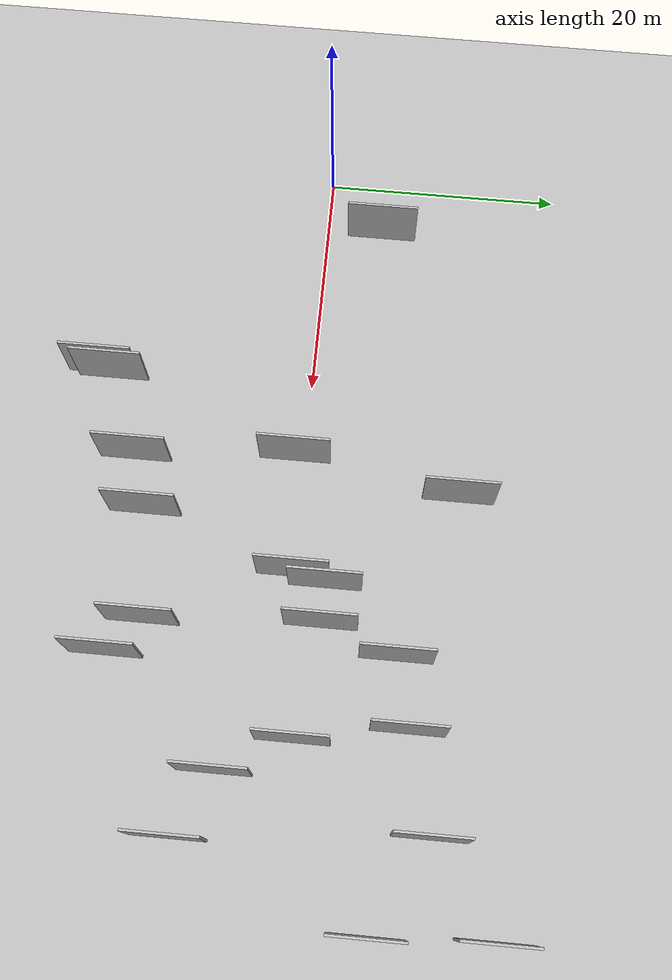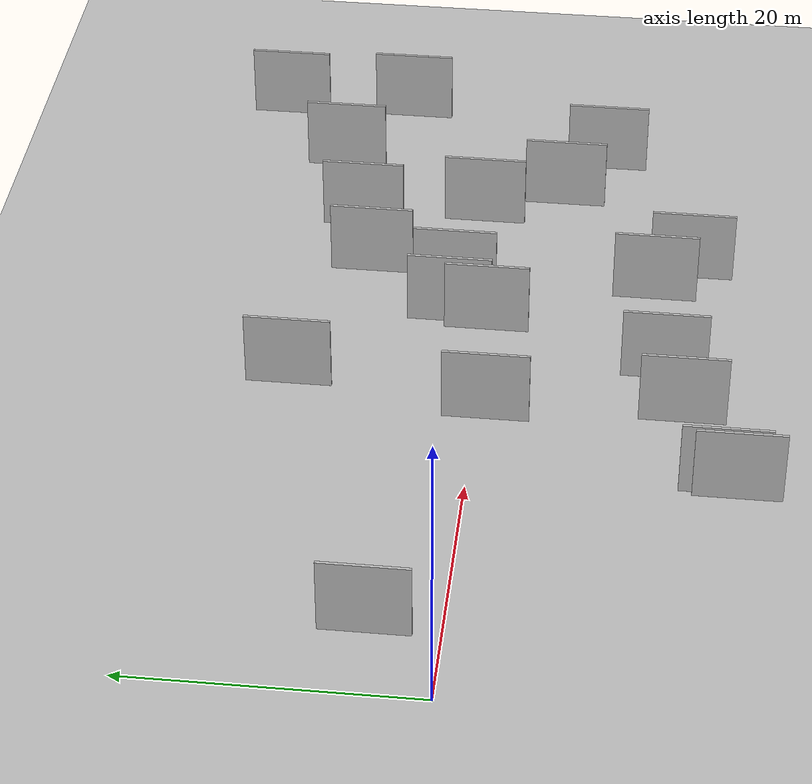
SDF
<?xml version="1.0" encoding="utf-8"?>

<sdf version="1.6">

   <world name="default">

      <gui fullscreen="0">

         <camera name="user_camera">

            <pose>-15 0 4.57585 0 0 0</pose>

            <view_controller>orbit</view_controller>

         </camera>

      </gui>

      <scene>

         <sky>

           <clouds>

             <speed>12</speed>

           </clouds>

         </sky>

         <ambient>0.4 0.4 0.4 1</ambient>

         <background>0.7 0.7 0.7 1</background>

         <shadows>1</shadows>

      </scene>

      <gravity>0 0 -9.8066</gravity>

      <magnetic_field>6e-06 2.3e-05 -4.2e-05</magnetic_field>

      <physics default="0" name="default_physics" type="ode">

         <ode>

            <solver>

               <type>quick</type>

               <iters>10</iters>

               <sor>1.0</sor>

               <use_dynamic_moi_rescaling>0</use_dynamic_moi_rescaling>

            </solver>

            <constraints>

               <cfm>0</cfm>

               <erp>0.2</erp>

               <contact_max_correcting_vel>100</contact_max_correcting_vel>

               <contact_surface_layer>0.001</contact_surface_layer>

            </constraints>

         </ode>

         <max_step_size>0.004</max_step_size>

         <real_time_factor>1</real_time_factor>

         <real_time_update_rate>250</real_time_update_rate>

      </physics>

      <light name="sun" type="directional">

         <cast_shadows>1</cast_shadows>

         <pose>0 0 10 0 0 0</pose>

         <diffuse>0.8 0.8 0.8 1</diffuse>

         <specular>0.2 0.2 0.2 1</specular>

         <attenuation>

            <range>1000</range>

            <constant>0.9</constant>

            <linear>0.01</linear>

            <quadratic>0.001</quadratic>

         </attenuation>

         <direction>-0.5 0.1 -0.9</direction>

      </light>

      <include>

         <name>ground_plane_1</name>

         <uri>model://HANNAS_ground_plane</uri>

         <pose>0 0 0  0 0 0</pose>

      </include>

      <include>

         <name>ground_plane_2</name>

         <uri>model://HANNAS_ground_plane</uri>

         <pose>100 0 0  0 0 0</pose>

      </include>

      <model name="HANNAS_wall_1">

         <static>1</static>

         <pose frame="">29.2783 13.1749 0.0 0.000000 0.000000 1.570796</pose>

         <link name="link">

            <pose frame="">0 0 3.00 0 0 0</pose>

            <collision name="collision">

               <geometry>

                  <box>

                     <size>6.00 0.2 6.00</size>

                  </box>

               </geometry>

               <max_contacts>10</max_contacts>

               <surface>

                  <contact>

                     <ode/>

                  </contact>

                  <bounce/>

                  <friction>

                     <torsional>

                        <ode/>

                     </torsional>

                     <ode/>

                  </friction>

               </surface>

            </collision>

            <visual name="visual">

               <cast_shadows>0</cast_shadows>

               <geometry>

                  <box>

                     <size>6.00 0.2 6.00</size>

                  </box>

               </geometry>

               <material>

                  <script>

                     <uri>model://HANNAS_wall/materials/scripts</uri>

                     <uri>model://HANNAS_wall/materials/textures</uri>

                     <name>vrc/HANNAS_wall</name>

                  </script>

               </material>

            </visual>

            <self_collide>0</self_collide>

            <enable_wind>0</enable_wind>

            <kinematic>0</kinematic>

         </link>

      </model>

      <model name="HANNAS_wall_2">

         <static>1</static>

         <pose frame="">20.3246 -17.9735 0.0 0.000000 0.000000 1.570796</pose>

         <link name="link">

            <pose frame="">0 0 3.00 0 0 0</pose>

            <collision name="collision">

               <geometry>

                  <box>

                     <size>6.00 0.2 6.00</size>

                  </box>

               </geometry>

               <max_contacts>10</max_contacts>

               <surface>

                  <contact>

                     <ode/>

                  </contact>

                  <bounce/>

                  <friction>

                     <torsional>

                        <ode/>

                     </torsional>

                     <ode/>

                  </friction>

               </surface>

            </collision>

            <visual name="visual">

               <cast_shadows>0</cast_shadows>

               <geometry>

                  <box>

                     <size>6.00 0.2 6.00</size>

                  </box>

               </geometry>

               <material>

                  <script>

                     <uri>model://HANNAS_wall/materials/scripts</uri>

                     <uri>model://HANNAS_wall/materials/textures</uri>

                     <name>vrc/HANNAS_wall</name>

                  </script>

               </material>

            </visual>

            <self_collide>0</self_collide>

            <enable_wind>0</enable_wind>

            <kinematic>0</kinematic>

         </link>

      </model>

      <model name="HANNAS_wall_3">

         <static>1</static>

         <pose frame="">64.2365 8.3479 0.0 0.000000 0.000000 1.570796</pose>

         <link name="link">

            <pose frame="">0 0 3.00 0 0 0</pose>

            <collision name="collision">

               <geometry>

                  <box>

                     <size>6.00 0.2 6.00</size>

                  </box>

               </geometry>

               <max_contacts>10</max_contacts>

               <surface>

                  <contact>

                     <ode/>

                  </contact>

                  <bounce/>

                  <friction>

                     <torsional>

                        <ode/>

                     </torsional>

                     <ode/>

                  </friction>

               </surface>

            </collision>

            <visual name="visual">

               <cast_shadows>0</cast_shadows>

               <geometry>

                  <box>

                     <size>6.00 0.2 6.00</size>

                  </box>

               </geometry>

               <material>

                  <script>

                     <uri>model://HANNAS_wall/materials/scripts</uri>

                     <uri>model://HANNAS_wall/materials/textures</uri>

                     <name>vrc/HANNAS_wall</name>

                  </script>

               </material>

            </visual>

            <self_collide>0</self_collide>

            <enable_wind>0</enable_wind>

            <kinematic>0</kinematic>

         </link>

      </model>

      <model name="HANNAS_wall_4">

         <static>1</static>

         <pose frame="">48.8033 10.4102 0.0 0.000000 0.000000 1.570796</pose>

         <link name="link">

            <pose frame="">0 0 3.00 0 0 0</pose>

            <collision name="collision">

               <geometry>

                  <box>

                     <size>6.00 0.2 6.00</size>

                  </box>

               </geometry>

               <max_contacts>10</max_contacts>

               <surface>

                  <contact>

                     <ode/>

                  </contact>

                  <bounce/>

                  <friction>

                     <torsional>

                        <ode/>

                     </torsional>

                     <ode/>

                  </friction>

               </surface>

            </collision>

            <visual name="visual">

               <cast_shadows>0</cast_shadows>

               <geometry>

                  <box>

                     <size>6.00 0.2 6.00</size>

                  </box>

               </geometry>

               <material>

                  <script>

                     <uri>model://HANNAS_wall/materials/scripts</uri>

                     <uri>model://HANNAS_wall/materials/textures</uri>

                     <name>vrc/HANNAS_wall</name>

                  </script>

               </material>

            </visual>

            <self_collide>0</self_collide>

            <enable_wind>0</enable_wind>

            <kinematic>0</kinematic>

         </link>

      </model>

      <model name="HANNAS_wall_5">

         <static>1</static>

         <pose frame="">5.0657 4.8053 0.0 0.000000 0.000000 1.570796</pose>

         <link name="link">

            <pose frame="">0 0 3.00 0 0 0</pose>

            <collision name="collision">

               <geometry>

                  <box>

                     <size>6.00 0.2 6.00</size>

                  </box>

               </geometry>

               <max_contacts>10</max_contacts>

               <surface>

                  <contact>

                     <ode/>

                  </contact>

                  <bounce/>

                  <friction>

                     <torsional>

                        <ode/>

                     </torsional>

                     <ode/>

                  </friction>

               </surface>

            </collision>

            <visual name="visual">

               <cast_shadows>0</cast_shadows>

               <geometry>

                  <box>

                     <size>6.00 0.2 6.00</size>

                  </box>

               </geometry>

               <material>

                  <script>

                     <uri>model://HANNAS_wall/materials/scripts</uri>

                     <uri>model://HANNAS_wall/materials/textures</uri>

                     <name>vrc/HANNAS_wall</name>

                  </script>

               </material>

            </visual>

            <self_collide>0</self_collide>

            <enable_wind>0</enable_wind>

            <kinematic>0</kinematic>

         </link>

      </model>

      <model name="HANNAS_wall_6">

         <static>1</static>

         <pose frame="">37.6219 2.8394 0.0 0.000000 0.000000 1.570796</pose>

         <link name="link">

            <pose frame="">0 0 3.00 0 0 0</pose>

            <collision name="collision">

               <geometry>

                  <box>

                     <size>6.00 0.2 6.00</size>

                  </box>

               </geometry>

               <max_contacts>10</max_contacts>

               <surface>

                  <contact>

                     <ode/>

                  </contact>

                  <bounce/>

                  <friction>

                     <torsional>

                        <ode/>

                     </torsional>

                     <ode/>

                  </friction>

               </surface>

            </collision>

            <visual name="visual">

               <cast_shadows>0</cast_shadows>

               <geometry>

                  <box>

                     <size>6.00 0.2 6.00</size>

                  </box>

               </geometry>

               <material>

                  <script>

                     <uri>model://HANNAS_wall/materials/scripts</uri>

                     <uri>model://HANNAS_wall/materials/textures</uri>

                     <name>vrc/HANNAS_wall</name>

                  </script>

               </material>

            </visual>

            <self_collide>0</self_collide>

            <enable_wind>0</enable_wind>

            <kinematic>0</kinematic>

         </link>

      </model>

      <model name="HANNAS_wall_7">

         <static>1</static>

         <pose frame="">41.8556 -11.6013 0.0 0.000000 0.000000 1.570796</pose>

         <link name="link">

            <pose frame="">0 0 3.00 0 0 0</pose>

            <collision name="collision">

               <geometry>

                  <box>

                     <size>6.00 0.2 6.00</size>

                  </box>

               </geometry>

               <max_contacts>10</max_contacts>

               <surface>

                  <contact>

                     <ode/>

                  </contact>

                  <bounce/>

                  <friction>

                     <torsional>

                        <ode/>

                     </torsional>

                     <ode/>

                  </friction>

               </surface>

            </collision>

            <visual name="visual">

               <cast_shadows>0</cast_shadows>

               <geometry>

                  <box>

                     <size>6.00 0.2 6.00</size>

                  </box>

               </geometry>

               <material>

                  <script>

                     <uri>model://HANNAS_wall/materials/scripts</uri>

                     <uri>model://HANNAS_wall/materials/textures</uri>

                     <name>vrc/HANNAS_wall</name>

                  </script>

               </material>

            </visual>

            <self_collide>0</self_collide>

            <enable_wind>0</enable_wind>

            <kinematic>0</kinematic>

         </link>

      </model>

      <model name="HANNAS_wall_8">

         <static>1</static>

         <pose frame="">58.4100 -7.2657 0.0 0.000000 0.000000 1.570796</pose>

         <link name="link">

            <pose frame="">0 0 3.00 0 0 0</pose>

            <collision name="collision">

               <geometry>

                  <box>

                     <size>6.00 0.2 6.00</size>

                  </box>

               </geometry>

               <max_contacts>10</max_contacts>

               <surface>

                  <contact>

                     <ode/>

                  </contact>

                  <bounce/>

                  <friction>

                     <torsional>

                        <ode/>

                     </torsional>

                     <ode/>

                  </friction>

               </surface>

            </collision>

            <visual name="visual">

               <cast_shadows>0</cast_shadows>

               <geometry>

                  <box>

                     <size>6.00 0.2 6.00</size>

                  </box>

               </geometry>

               <material>

                  <script>

                     <uri>model://HANNAS_wall/materials/scripts</uri>

                     <uri>model://HANNAS_wall/materials/textures</uri>

                     <name>vrc/HANNAS_wall</name>

                  </script>

               </material>

            </visual>

            <self_collide>0</self_collide>

            <enable_wind>0</enable_wind>

            <kinematic>0</kinematic>

         </link>

      </model>

      <model name="HANNAS_wall_9">

         <static>1</static>

         <pose frame="">32.6485 -12.6439 0.0 0.000000 0.000000 1.570796</pose>

         <link name="link">

            <pose frame="">0 0 3.00 0 0 0</pose>

            <collision name="collision">

               <geometry>

                  <box>

                     <size>6.00 0.2 6.00</size>

                  </box>

               </geometry>

               <max_contacts>10</max_contacts>

               <surface>

                  <contact>

                     <ode/>

                  </contact>

                  <bounce/>

                  <friction>

                     <torsional>

                        <ode/>

                     </torsional>

                     <ode/>

                  </friction>

               </surface>

            </collision>

            <visual name="visual">

               <cast_shadows>0</cast_shadows>

               <geometry>

                  <box>

                     <size>6.00 0.2 6.00</size>

                  </box>

               </geometry>

               <material>

                  <script>

                     <uri>model://HANNAS_wall/materials/scripts</uri>

                     <uri>model://HANNAS_wall/materials/textures</uri>

                     <name>vrc/HANNAS_wall</name>

                  </script>

               </material>

            </visual>

            <self_collide>0</self_collide>

            <enable_wind>0</enable_wind>

            <kinematic>0</kinematic>

         </link>

      </model>

      <model name="HANNAS_wall_10">

         <static>1</static>

         <pose frame="">20.7093 -17.0665 0.0 0.000000 0.000000 1.570796</pose>

         <link name="link">

            <pose frame="">0 0 3.00 0 0 0</pose>

            <collision name="collision">

               <geometry>

                  <box>

                     <size>6.00 0.2 6.00</size>

                  </box>

               </geometry>

               <max_contacts>10</max_contacts>

               <surface>

                  <contact>

                     <ode/>

                  </contact>

                  <bounce/>

                  <friction>

                     <torsional>

                        <ode/>

                     </torsional>

                     <ode/>

                  </friction>

               </surface>

            </collision>

            <visual name="visual">

               <cast_shadows>0</cast_shadows>

               <geometry>

                  <box>

                     <size>6.00 0.2 6.00</size>

                  </box>

               </geometry>

               <material>

                  <script>

                     <uri>model://HANNAS_wall/materials/scripts</uri>

                     <uri>model://HANNAS_wall/materials/textures</uri>

                     <name>vrc/HANNAS_wall</name>

                  </script>

               </material>

            </visual>

            <self_collide>0</self_collide>

            <enable_wind>0</enable_wind>

            <kinematic>0</kinematic>

         </link>

      </model>

      <model name="HANNAS_wall_11">

         <static>1</static>

         <pose frame="">53.2182 -4.3628 0.0 0.000000 0.000000 1.570796</pose>

         <link name="link">

            <pose frame="">0 0 3.00 0 0 0</pose>

            <collision name="collision">

               <geometry>

                  <box>

                     <size>6.00 0.2 6.00</size>

                  </box>

               </geometry>

               <max_contacts>10</max_contacts>

               <surface>

                  <contact>

                     <ode/>

                  </contact>

                  <bounce/>

                  <friction>

                     <torsional>

                        <ode/>

                     </torsional>

                     <ode/>

                  </friction>

               </surface>

            </collision>

            <visual name="visual">

               <cast_shadows>0</cast_shadows>

               <geometry>

                  <box>

                     <size>6.00 0.2 6.00</size>

                  </box>

               </geometry>

               <material>

                  <script>

                     <uri>model://HANNAS_wall/materials/scripts</uri>

                     <uri>model://HANNAS_wall/materials/textures</uri>

                     <name>vrc/HANNAS_wall</name>

                  </script>

               </material>

            </visual>

            <self_collide>0</self_collide>

            <enable_wind>0</enable_wind>

            <kinematic>0</kinematic>

         </link>

      </model>

      <model name="HANNAS_wall_12">

         <static>1</static>

         <pose frame="">44.7602 -14.1546 0.0 0.000000 0.000000 1.570796</pose>

         <link name="link">

            <pose frame="">0 0 3.00 0 0 0</pose>

            <collision name="collision">

               <geometry>

                  <box>

                     <size>6.00 0.2 6.00</size>

                  </box>

               </geometry>

               <max_contacts>10</max_contacts>

               <surface>

                  <contact>

                     <ode/>

                  </contact>

                  <bounce/>

                  <friction>

                     <torsional>

                        <ode/>

                     </torsional>

                     <ode/>

                  </friction>

               </surface>

            </collision>

            <visual name="visual">

               <cast_shadows>0</cast_shadows>

               <geometry>

                  <box>

                     <size>6.00 0.2 6.00</size>

                  </box>

               </geometry>

               <material>

                  <script>

                     <uri>model://HANNAS_wall/materials/scripts</uri>

                     <uri>model://HANNAS_wall/materials/textures</uri>

                     <name>vrc/HANNAS_wall</name>

                  </script>

               </material>

            </visual>

            <self_collide>0</self_collide>

            <enable_wind>0</enable_wind>

            <kinematic>0</kinematic>

         </link>

      </model>

      <model name="HANNAS_wall_13">

         <static>1</static>

         <pose frame="">27.9361 -14.0959 0.0 0.000000 0.000000 1.570796</pose>

         <link name="link">

            <pose frame="">0 0 3.00 0 0 0</pose>

            <collision name="collision">

               <geometry>

                  <box>

                     <size>6.00 0.2 6.00</size>

                  </box>

               </geometry>

               <max_contacts>10</max_contacts>

               <surface>

                  <contact>

                     <ode/>

                  </contact>

                  <bounce/>

                  <friction>

                     <torsional>

                        <ode/>

                     </torsional>

                     <ode/>

                  </friction>

               </surface>

            </collision>

            <visual name="visual">

               <cast_shadows>0</cast_shadows>

               <geometry>

                  <box>

                     <size>6.00 0.2 6.00</size>

                  </box>

               </geometry>

               <material>

                  <script>

                     <uri>model://HANNAS_wall/materials/scripts</uri>

                     <uri>model://HANNAS_wall/materials/textures</uri>

                     <name>vrc/HANNAS_wall</name>

                  </script>

               </material>

            </visual>

            <self_collide>0</self_collide>

            <enable_wind>0</enable_wind>

            <kinematic>0</kinematic>

         </link>

      </model>

      <model name="HANNAS_wall_14">

         <static>1</static>

         <pose frame="">26.8473 -0.7166 0.0 0.000000 0.000000 1.570796</pose>

         <link name="link">

            <pose frame="">0 0 3.00 0 0 0</pose>

            <collision name="collision">

               <geometry>

                  <box>

                     <size>6.00 0.2 6.00</size>

                  </box>

               </geometry>

               <max_contacts>10</max_contacts>

               <surface>

                  <contact>

                     <ode/>

                  </contact>

                  <bounce/>

                  <friction>

                     <torsional>

                        <ode/>

                     </torsional>

                     <ode/>

                  </friction>

               </surface>

            </collision>

            <visual name="visual">

               <cast_shadows>0</cast_shadows>

               <geometry>

                  <box>

                     <size>6.00 0.2 6.00</size>

                  </box>

               </geometry>

               <material>

                  <script>

                     <uri>model://HANNAS_wall/materials/scripts</uri>

                     <uri>model://HANNAS_wall/materials/textures</uri>

                     <name>vrc/HANNAS_wall</name>

                  </script>

               </material>

            </visual>

            <self_collide>0</self_collide>

            <enable_wind>0</enable_wind>

            <kinematic>0</kinematic>

         </link>

      </model>

      <model name="HANNAS_wall_15">

         <static>1</static>

         <pose frame="">40.9460 2.7938 0.0 0.000000 0.000000 1.570796</pose>

         <link name="link">

            <pose frame="">0 0 3.00 0 0 0</pose>

            <collision name="collision">

               <geometry>

                  <box>

                     <size>6.00 0.2 6.00</size>

                  </box>

               </geometry>

               <max_contacts>10</max_contacts>

               <surface>

                  <contact>

                     <ode/>

                  </contact>

                  <bounce/>

                  <friction>

                     <torsional>

                        <ode/>

                     </torsional>

                     <ode/>

                  </friction>

               </surface>

            </collision>

            <visual name="visual">

               <cast_shadows>0</cast_shadows>

               <geometry>

                  <box>

                     <size>6.00 0.2 6.00</size>

                  </box>

               </geometry>

               <material>

                  <script>

                     <uri>model://HANNAS_wall/materials/scripts</uri>

                     <uri>model://HANNAS_wall/materials/textures</uri>

                     <name>vrc/HANNAS_wall</name>

                  </script>

               </material>

            </visual>

            <self_collide>0</self_collide>

            <enable_wind>0</enable_wind>

            <kinematic>0</kinematic>

         </link>

      </model>

      <model name="HANNAS_wall_16">

         <static>1</static>

         <pose frame="">56.6864 12.6894 0.0 0.000000 0.000000 1.570796</pose>

         <link name="link">

            <pose frame="">0 0 3.00 0 0 0</pose>

            <collision name="collision">

               <geometry>

                  <box>

                     <size>6.00 0.2 6.00</size>

                  </box>

               </geometry>

               <max_contacts>10</max_contacts>

               <surface>

                  <contact>

                     <ode/>

                  </contact>

                  <bounce/>

                  <friction>

                     <torsional>

                        <ode/>

                     </torsional>

                     <ode/>

                  </friction>

               </surface>

            </collision>

            <visual name="visual">

               <cast_shadows>0</cast_shadows>

               <geometry>

                  <box>

                     <size>6.00 0.2 6.00</size>

                  </box>

               </geometry>

               <material>

                  <script>

                     <uri>model://HANNAS_wall/materials/scripts</uri>

                     <uri>model://HANNAS_wall/materials/textures</uri>

                     <name>vrc/HANNAS_wall</name>

                  </script>

               </material>

            </visual>

            <self_collide>0</self_collide>

            <enable_wind>0</enable_wind>

            <kinematic>0</kinematic>

         </link>

      </model>

      <model name="HANNAS_wall_17">

         <static>1</static>

         <pose frame="">36.9061 0.1240 0.0 0.000000 0.000000 1.570796</pose>

         <link name="link">

            <pose frame="">0 0 3.00 0 0 0</pose>

            <collision name="collision">

               <geometry>

                  <box>

                     <size>6.00 0.2 6.00</size>

                  </box>

               </geometry>

               <max_contacts>10</max_contacts>

               <surface>

                  <contact>

                     <ode/>

                  </contact>

                  <bounce/>

                  <friction>

                     <torsional>

                        <ode/>

                     </torsional>

                     <ode/>

                  </friction>

               </surface>

            </collision>

            <visual name="visual">

               <cast_shadows>0</cast_shadows>

               <geometry>

                  <box>

                     <size>6.00 0.2 6.00</size>

                  </box>

               </geometry>

               <material>

                  <script>

                     <uri>model://HANNAS_wall/materials/scripts</uri>

                     <uri>model://HANNAS_wall/materials/textures</uri>

                     <name>vrc/HANNAS_wall</name>

                  </script>

               </material>

            </visual>

            <self_collide>0</self_collide>

            <enable_wind>0</enable_wind>

            <kinematic>0</kinematic>

         </link>

      </model>

      <model name="HANNAS_wall_18">

         <static>1</static>

         <pose frame="">50.3098 1.4574 0.0 0.000000 0.000000 1.570796</pose>

         <link name="link">

            <pose frame="">0 0 3.00 0 0 0</pose>

            <collision name="collision">

               <geometry>

                  <box>

                     <size>6.00 0.2 6.00</size>

                  </box>

               </geometry>

               <max_contacts>10</max_contacts>

               <surface>

                  <contact>

                     <ode/>

                  </contact>

                  <bounce/>

                  <friction>

                     <torsional>

                        <ode/>

                     </torsional>

                     <ode/>

                  </friction>

               </surface>

            </collision>

            <visual name="visual">

               <cast_shadows>0</cast_shadows>

               <geometry>

                  <box>

                     <size>6.00 0.2 6.00</size>

                  </box>

               </geometry>

               <material>

                  <script>

                     <uri>model://HANNAS_wall/materials/scripts</uri>

                     <uri>model://HANNAS_wall/materials/textures</uri>

                     <name>vrc/HANNAS_wall</name>

                  </script>

               </material>

            </visual>

            <self_collide>0</self_collide>

            <enable_wind>0</enable_wind>

            <kinematic>0</kinematic>

         </link>

      </model>

      <model name="HANNAS_wall_19">

         <static>1</static>

         <pose frame="">63.7422 17.9629 0.0 0.000000 0.000000 1.570796</pose>

         <link name="link">

            <pose frame="">0 0 3.00 0 0 0</pose>

            <collision name="collision">

               <geometry>

                  <box>

                     <size>6.00 0.2 6.00</size>

                  </box>

               </geometry>

               <max_contacts>10</max_contacts>

               <surface>

                  <contact>

                     <ode/>

                  </contact>

                  <bounce/>

                  <friction>

                     <torsional>

                        <ode/>

                     </torsional>

                     <ode/>

                  </friction>

               </surface>

            </collision>

            <visual name="visual">

               <cast_shadows>0</cast_shadows>

               <geometry>

                  <box>

                     <size>6.00 0.2 6.00</size>

                  </box>

               </geometry>

               <material>

                  <script>

                     <uri>model://HANNAS_wall/materials/scripts</uri>

                     <uri>model://HANNAS_wall/materials/textures</uri>

                     <name>vrc/HANNAS_wall</name>

                  </script>

               </material>

            </visual>

            <self_collide>0</self_collide>

            <enable_wind>0</enable_wind>

            <kinematic>0</kinematic>

         </link>

      </model>

      <model name="HANNAS_wall_20">

         <static>1</static>

         <pose frame="">43.1114 9.0576 0.0 0.000000 0.000000 1.570796</pose>

         <link name="link">

            <pose frame="">0 0 3.00 0 0 0</pose>

            <collision name="collision">

               <geometry>

                  <box>

                     <size>6.00 0.2 6.00</size>

                  </box>

               </geometry>

               <max_contacts>10</max_contacts>

               <surface>

                  <contact>

                     <ode/>

                  </contact>

                  <bounce/>

                  <friction>

                     <torsional>

                        <ode/>

                     </torsional>

                     <ode/>

                  </friction>

               </surface>

            </collision>

            <visual name="visual">

               <cast_shadows>0</cast_shadows>

               <geometry>

                  <box>

                     <size>6.00 0.2 6.00</size>

                  </box>

               </geometry>

               <material>

                  <script>

                     <uri>model://HANNAS_wall/materials/scripts</uri>

                     <uri>model://HANNAS_wall/materials/textures</uri>

                     <name>vrc/HANNAS_wall</name>

                  </script>

               </material>

            </visual>

            <self_collide>0</self_collide>

            <enable_wind>0</enable_wind>

            <kinematic>0</kinematic>

         </link>

      </model>

   </world>

</sdf>

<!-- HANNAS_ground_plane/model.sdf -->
<sdf version="1.4">
<model name="HANNAS_ground_plane">
  <static>true</static>
    <link name="link">
      <collision name="collision">
        <geometry>
          <plane>
            <normal>0 0 1</normal>
            <size>1000 1000</size>
          </plane>
        </geometry>
        <surface>
          <friction>
            <ode>
              <mu>100</mu>
              <mu2>50</mu2>
            </ode>
          </friction>
        </surface>
      </collision>
      <visual name="visual">
        <cast_shadows>false</cast_shadows>
        <geometry>
          <plane>
            <normal>0 0 1</normal>
            <size>1000 1000</size>
          </plane>
        </geometry>
        <material>
          <script>
            <uri>model://HANNAS_ground_plane/materials/scripts/HANNAS_ground_plane.material</uri>
	    <uri>model://HANNAS_ground_plane/materials/textures</uri>
            <name>HANNASGroundPlane/Image</name>
          </script>
        </material>
      </visual>
    </link>
  </model>
</sdf>
